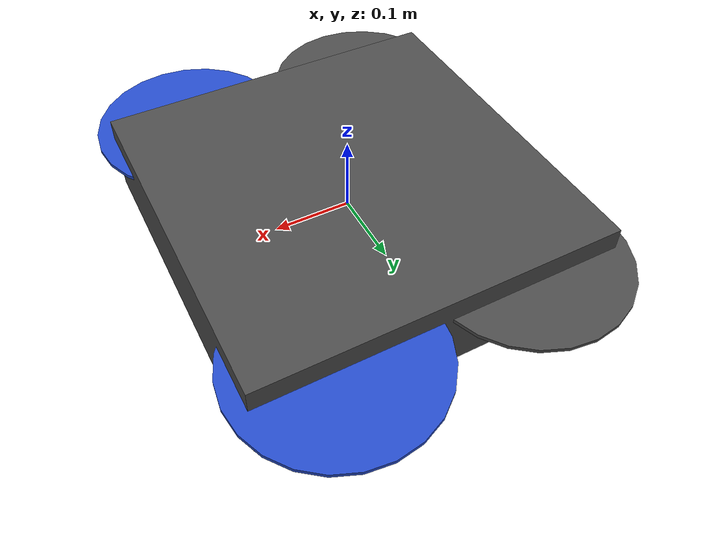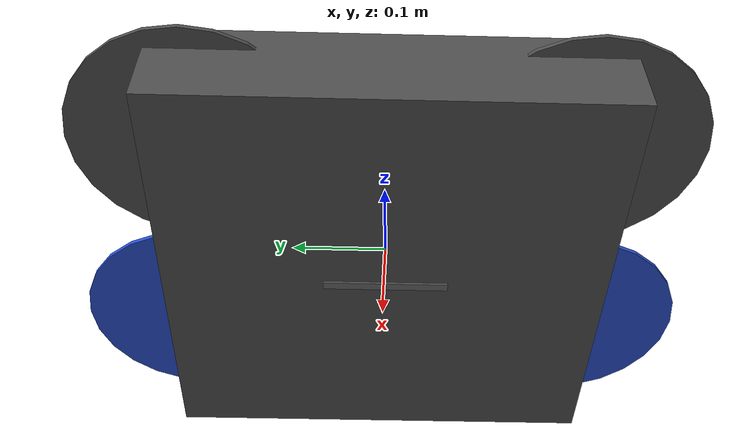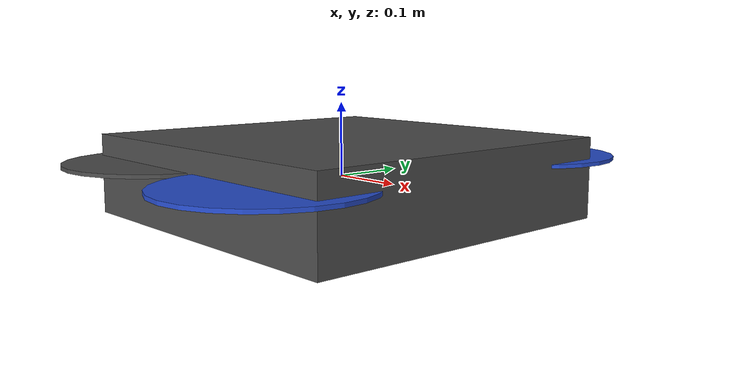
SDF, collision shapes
<sdf version='1.6'>
  <model name='iris'>
    <link name='base_link'>
      <pose frame=''>0 0 0 0 -0 0</pose>
      <inertial>
        <pose frame=''>0 0 0 0 -0 0</pose>
        <mass>1.5</mass>
        <inertia>
          <ixx>0.0347563</ixx>
          <ixy>0</ixy>
          <ixz>0</ixz>
          <iyy>0.0458929</iyy>
          <iyz>0</iyz>
          <izz>0.0977</izz>
        </inertia>
      </inertial>
      <collision name='base_link_inertia_collision'>
        <pose frame=''>0 0 0 0 -0 0</pose>
        <geometry>
          <box>
            <size>0.47 0.47 0.11</size>
          </box>
        </geometry>
        <surface>
          <contact>
            <ode>
              <min_depth>0.001</min_depth>
              <max_vel>0</max_vel>
            </ode>
          </contact>
          <friction>
            <ode/>
          </friction>
        </surface>
      </collision>
      <collision name='base_link_fixed_joint_lump__front_cam_link_collision_1'>
        <pose frame=''>0 0 -0.05 0 0.26179 0</pose>
        <geometry>
          <box>
            <size>0.007 0.13 0.02</size>
          </box>
        </geometry>
        <surface>
          <contact>
            <ode/>
          </contact>
          <friction>
            <ode/>
          </friction>
        </surface>
      </collision>
      <collision name='base_link_fixed_joint_lump__thermal_cam_link_collision_2'>
        <pose frame=''>0 0 -0.05 0 0.26179 0</pose>
        <geometry>
          <box>
            <size>0.01 0.01 0.01</size>
          </box>
        </geometry>
        <surface>
          <contact>
            <ode/>
          </contact>
          <friction>
            <ode/>
          </friction>
        </surface>
      </collision>
      <collision name='base_link_fixed_joint_lump__thermal_cam_thermal_link_collision_3'>
        <pose frame=''>0 0 -0.05 0 0.26179 0</pose>
        <geometry>
          <box>
            <size>0.01 0.01 0.01</size>
          </box>
        </geometry>
        <surface>
          <contact>
            <ode/>
          </contact>
          <friction>
            <ode/>
          </friction>
        </surface>
      </collision>
      <visual name='base_link_inertia_visual'>
        <pose frame=''>0 0 0 0 -0 0</pose>
        <geometry>
          <mesh>
            <scale>1 1 1</scale>
            <uri>model://rotors_description/meshes/iris.stl</uri>
          </mesh>
        </geometry>
        <material>
          <script>
            <name>Gazebo/DarkGrey</name>
            <uri>file://media/materials/scripts/gazebo.material</uri>
          </script>
        </material>
      </visual>
      <visual name='base_link_fixed_joint_lump__front_cam_link_visual_1'>
        <pose frame=''>0 0 -0.05 0 0.26179 0</pose>
        <geometry>
          <box>
            <size>0.007 0.13 0.02</size>
          </box>
        </geometry>
        <material>
          <script>
            <name>Gazebo/Grey</name>
            <uri>file://media/materials/scripts/gazebo.material</uri>
          </script>
        </material>
      </visual>
      <visual name='base_link_fixed_joint_lump__thermal_cam_link_visual_2'>
        <pose frame=''>0 0 -0.05 0 0.26179 0</pose>
        <geometry>
          <box>
            <size>0.01 0.01 0.01</size>
          </box>
        </geometry>
        <material>
          <script>
            <uri>__default__</uri>
            <name>__default__</name>
          </script>
        </material>
      </visual>
      <visual name='base_link_fixed_joint_lump__thermal_cam_thermal_link_visual_3'>
        <pose frame=''>0 0 -0.05 0 0.26179 0</pose>
        <geometry>
          <box>
            <size>0.01 0.01 0.01</size>
          </box>
        </geometry>
        <material>
          <script>
            <uri>__default__</uri>
            <name>__default__</name>
          </script>
        </material>
      </visual>
      <velocity_decay/>
      <velocity_decay/>
      <velocity_decay/>
      <sensor name='front_cam' type='depth'>
        <update_rate>20</update_rate>
        <camera name='__default__'>
          <horizontal_fov>1.09607</horizontal_fov>
          <image>
            <format>R8G8B8</format>
            <width>640</width>
            <height>480</height>
          </image>
          <clip>
            <near>0.5</near>
            <far>9</far>
          </clip>
        </camera>
        <plugin name='front_cam_camera_controller' filename='libgazebo_ros_openni_kinect.so'>
          <imageTopicName>front_cam/rgb/image_raw</imageTopicName>
          <cameraInfoTopicName>front_cam/rgb/camera_info</cameraInfoTopicName>
          <depthImageTopicName>front_cam/depth/image_raw</depthImageTopicName>
          <depthImageCameraInfoTopicName>front_cam/depth/camera_info</depthImageCameraInfoTopicName>
          <pointCloudTopicName>front_cam/depth/points</pointCloudTopicName>
          <frameName>front_cam_depth_optical_frame</frameName>
        </plugin>
        <pose frame=''>0 0.049 -0.05 0 0.26179 0</pose>
      </sensor>
      <velocity_decay/>
      <sensor name='thermal_cam_camera_sensor' type='camera'>
        <update_rate>77</update_rate>
        <camera name='__default__'>
          <horizontal_fov>1.0472</horizontal_fov>
          <image>
            <format>R8G8B8</format>
            <width>640</width>
            <height>480</height>
          </image>
          <clip>
            <near>0.01</near>
            <far>100</far>
          </clip>
        </camera>
        <plugin name='thermal_cam_camera_controller' filename='libgazebo_ros_camera.so'>
          <cameraName>thermal_cam</cameraName>
          <alwaysOn>true</alwaysOn>
          <updateRate>77</updateRate>
          <imageTopicName>RGB/image_raw</imageTopicName>
          <cameraInfoTopicName>RGB/camera_info</cameraInfoTopicName>
          <frameName>thermal_cam_optical_frame</frameName>
        </plugin>
        <pose frame=''>0 0 -0.05 0 0.26179 0</pose>
      </sensor>
      <gravity>1</gravity>
      <velocity_decay/>
      <sensor name='thermal_cam_camera_sensor' type='camera'>
        <update_rate>10</update_rate>
        <camera name='__default__'>
          <horizontal_fov>0.977384</horizontal_fov>
          <image>
            <format>R8G8B8</format>
            <width>160</width>
            <height>120</height>
          </image>
          <clip>
            <near>0.01</near>
            <far>100</far>
          </clip>
        </camera>
        <plugin name='thermal_camera_controller' filename='libgazebo_ros_thermal_camera_color.so'>
          <alwaysOn>true</alwaysOn>
          <updateRate>10</updateRate>
          <imageTopicName>/thermal_cam/image_raw</imageTopicName>
          <cameraInfoTopicName>/thermal_cam/camera_info</cameraInfoTopicName>
          <frameName>thermal_cam_optical_frame</frameName>
        </plugin>
        <pose frame=''>0 0 -0.05 0 0.26179 0</pose>
      </sensor>
    </link>
    <link name='/ground_truth/odometry_sensorgt_link'>
      <pose frame=''>0 0 0 0 -0 0</pose>
      <inertial>
        <pose frame=''>0 0 0 0 -0 0</pose>
        <mass>1e-05</mass>
        <inertia>
          <ixx>1e-05</ixx>
          <ixy>0</ixy>
          <ixz>0</ixz>
          <iyy>1e-05</iyy>
          <iyz>0</iyz>
          <izz>1e-05</izz>
        </inertia>
      </inertial>
    </link>
    <joint name='/ground_truth/odometry_sensorgt_joint' type='revolute'>
      <child>/ground_truth/odometry_sensorgt_link</child>
      <parent>base_link</parent>
      <axis>
        <xyz>1 0 0</xyz>
        <limit>
          <lower>0</lower>
          <upper>0</upper>
          <effort>0</effort>
          <velocity>0</velocity>
        </limit>
        <dynamics>
          <spring_reference>0</spring_reference>
          <spring_stiffness>0</spring_stiffness>
        </dynamics>
        <use_parent_model_frame>1</use_parent_model_frame>
      </axis>
    </joint>
    <link name='/imu_link'>
      <pose frame=''>0 0 0 0 -0 0</pose>
      <inertial>
        <pose frame=''>0 0 0 0 -0 0</pose>
        <mass>0.015</mass>
        <inertia>
          <ixx>1e-05</ixx>
          <ixy>0</ixy>
          <ixz>0</ixz>
          <iyy>1e-05</iyy>
          <iyz>0</iyz>
          <izz>1e-05</izz>
        </inertia>
      </inertial>
    </link>
    <joint name='/imu_joint' type='revolute'>
      <child>/imu_link</child>
      <parent>base_link</parent>
      <axis>
        <xyz>1 0 0</xyz>
        <limit>
          <lower>0</lower>
          <upper>0</upper>
          <effort>0</effort>
          <velocity>0</velocity>
        </limit>
        <dynamics>
          <spring_reference>0</spring_reference>
          <spring_stiffness>0</spring_stiffness>
        </dynamics>
        <use_parent_model_frame>1</use_parent_model_frame>
      </axis>
    </joint>
    <link name='/imugt_link'>
      <pose frame=''>0 0 0 0 -0 0</pose>
      <inertial>
        <pose frame=''>0 0 0 0 -0 0</pose>
        <mass>1e-05</mass>
        <inertia>
          <ixx>1e-05</ixx>
          <ixy>0</ixy>
          <ixz>0</ixz>
          <iyy>1e-05</iyy>
          <iyz>0</iyz>
          <izz>1e-05</izz>
        </inertia>
      </inertial>
    </link>
    <joint name='/imugt_joint' type='revolute'>
      <child>/imugt_link</child>
      <parent>base_link</parent>
      <axis>
        <xyz>1 0 0</xyz>
        <limit>
          <lower>0</lower>
          <upper>0</upper>
          <effort>0</effort>
          <velocity>0</velocity>
        </limit>
        <dynamics>
          <spring_reference>0</spring_reference>
          <spring_stiffness>0</spring_stiffness>
        </dynamics>
        <use_parent_model_frame>1</use_parent_model_frame>
      </axis>
    </joint>
    <link name='rotor_0'>
      <pose frame=''>0.13 -0.22 0.023 0 -0 0</pose>
      <inertial>
        <pose frame=''>0 0 0 0 -0 0</pose>
        <mass>0.005</mass>
        <inertia>
          <ixx>9.75e-07</ixx>
          <ixy>0</ixy>
          <ixz>0</ixz>
          <iyy>0.000273104</iyy>
          <iyz>0</iyz>
          <izz>0.000274004</izz>
        </inertia>
      </inertial>
      <collision name='rotor_0_collision'>
        <pose frame=''>0 0 0 0 -0 0</pose>
        <geometry>
          <cylinder>
            <length>0.005</length>
            <radius>0.128</radius>
          </cylinder>
        </geometry>
        <surface>
          <contact>
            <ode/>
          </contact>
          <friction>
            <ode/>
          </friction>
        </surface>
      </collision>
      <visual name='rotor_0_visual'>
        <pose frame=''>0 0 0 0 -0 0</pose>
        <geometry>
          <mesh>
            <scale>1 1 1</scale>
            <uri>model://rotors_description/meshes/iris_prop_ccw.dae</uri>
          </mesh>
        </geometry>
        <material>
          <script>
            <name>Gazebo/Blue</name>
            <uri>file://media/materials/scripts/gazebo.material</uri>
          </script>
        </material>
      </visual>
      <gravity>1</gravity>
      <velocity_decay/>
    </link>
    <joint name='rotor_0_joint' type='revolute'>
      <child>rotor_0</child>
      <parent>base_link</parent>
      <axis>
        <xyz>0 0 1</xyz>
        <limit>
          <lower>-1e+16</lower>
          <upper>1e+16</upper>
        </limit>
        <dynamics>
          <spring_reference>0</spring_reference>
          <spring_stiffness>0</spring_stiffness>
        </dynamics>
        <use_parent_model_frame>1</use_parent_model_frame>
      </axis>
    </joint>
    <link name='rotor_1'>
      <pose frame=''>-0.13 0.2 0.023 0 -0 0</pose>
      <inertial>
        <pose frame=''>0 0 0 0 -0 0</pose>
        <mass>0.005</mass>
        <inertia>
          <ixx>9.75e-07</ixx>
          <ixy>0</ixy>
          <ixz>0</ixz>
          <iyy>0.000273104</iyy>
          <iyz>0</iyz>
          <izz>0.000274004</izz>
        </inertia>
      </inertial>
      <collision name='rotor_1_collision'>
        <pose frame=''>0 0 0 0 -0 0</pose>
        <geometry>
          <cylinder>
            <length>0.005</length>
            <radius>0.128</radius>
          </cylinder>
        </geometry>
        <surface>
          <contact>
            <ode/>
          </contact>
          <friction>
            <ode/>
          </friction>
        </surface>
      </collision>
      <visual name='rotor_1_visual'>
        <pose frame=''>0 0 0 0 -0 0</pose>
        <geometry>
          <mesh>
            <scale>1 1 1</scale>
            <uri>model://rotors_description/meshes/iris_prop_ccw.dae</uri>
          </mesh>
        </geometry>
        <material>
          <script>
            <name>Gazebo/DarkGrey</name>
            <uri>file://media/materials/scripts/gazebo.material</uri>
          </script>
        </material>
      </visual>
      <gravity>1</gravity>
      <velocity_decay/>
    </link>
    <joint name='rotor_1_joint' type='revolute'>
      <child>rotor_1</child>
      <parent>base_link</parent>
      <axis>
        <xyz>0 0 1</xyz>
        <limit>
          <lower>-1e+16</lower>
          <upper>1e+16</upper>
        </limit>
        <dynamics>
          <spring_reference>0</spring_reference>
          <spring_stiffness>0</spring_stiffness>
        </dynamics>
        <use_parent_model_frame>1</use_parent_model_frame>
      </axis>
    </joint>
    <link name='rotor_2'>
      <pose frame=''>0.13 0.22 0.023 0 -0 0</pose>
      <inertial>
        <pose frame=''>0 0 0 0 -0 0</pose>
        <mass>0.005</mass>
        <inertia>
          <ixx>9.75e-07</ixx>
          <ixy>0</ixy>
          <ixz>0</ixz>
          <iyy>0.000273104</iyy>
          <iyz>0</iyz>
          <izz>0.000274004</izz>
        </inertia>
      </inertial>
      <collision name='rotor_2_collision'>
        <pose frame=''>0 0 0 0 -0 0</pose>
        <geometry>
          <cylinder>
            <length>0.005</length>
            <radius>0.128</radius>
          </cylinder>
        </geometry>
        <surface>
          <contact>
            <ode/>
          </contact>
          <friction>
            <ode/>
          </friction>
        </surface>
      </collision>
      <visual name='rotor_2_visual'>
        <pose frame=''>0 0 0 0 -0 0</pose>
        <geometry>
          <mesh>
            <scale>1 1 1</scale>
            <uri>model://rotors_description/meshes/iris_prop_cw.dae</uri>
          </mesh>
        </geometry>
        <material>
          <script>
            <name>Gazebo/Blue</name>
            <uri>file://media/materials/scripts/gazebo.material</uri>
          </script>
        </material>
      </visual>
      <gravity>1</gravity>
      <velocity_decay/>
    </link>
    <joint name='rotor_2_joint' type='revolute'>
      <child>rotor_2</child>
      <parent>base_link</parent>
      <axis>
        <xyz>0 0 1</xyz>
        <limit>
          <lower>-1e+16</lower>
          <upper>1e+16</upper>
        </limit>
        <dynamics>
          <spring_reference>0</spring_reference>
          <spring_stiffness>0</spring_stiffness>
        </dynamics>
        <use_parent_model_frame>1</use_parent_model_frame>
      </axis>
    </joint>
    <link name='rotor_3'>
      <pose frame=''>-0.13 -0.2 0.023 0 -0 0</pose>
      <inertial>
        <pose frame=''>0 0 0 0 -0 0</pose>
        <mass>0.005</mass>
        <inertia>
          <ixx>9.75e-07</ixx>
          <ixy>0</ixy>
          <ixz>0</ixz>
          <iyy>0.000273104</iyy>
          <iyz>0</iyz>
          <izz>0.000274004</izz>
        </inertia>
      </inertial>
      <collision name='rotor_3_collision'>
        <pose frame=''>0 0 0 0 -0 0</pose>
        <geometry>
          <cylinder>
            <length>0.005</length>
            <radius>0.128</radius>
          </cylinder>
        </geometry>
        <surface>
          <contact>
            <ode/>
          </contact>
          <friction>
            <ode/>
          </friction>
        </surface>
      </collision>
      <visual name='rotor_3_visual'>
        <pose frame=''>0 0 0 0 -0 0</pose>
        <geometry>
          <mesh>
            <scale>1 1 1</scale>
            <uri>model://rotors_description/meshes/iris_prop_cw.dae</uri>
          </mesh>
        </geometry>
        <material>
          <script>
            <name>Gazebo/DarkGrey</name>
            <uri>file://media/materials/scripts/gazebo.material</uri>
          </script>
        </material>
      </visual>
      <gravity>1</gravity>
      <velocity_decay/>
    </link>
    <joint name='rotor_3_joint' type='revolute'>
      <child>rotor_3</child>
      <parent>base_link</parent>
      <axis>
        <xyz>0 0 1</xyz>
        <limit>
          <lower>-1e+16</lower>
          <upper>1e+16</upper>
        </limit>
        <dynamics>
          <spring_reference>0</spring_reference>
          <spring_stiffness>0</spring_stiffness>
        </dynamics>
        <use_parent_model_frame>1</use_parent_model_frame>
      </axis>
    </joint>
    <plugin name='rosbag' filename='librotors_gazebo_multirotor_base_plugin.so'>
      <robotNamespace/>
      <linkName>base_link</linkName>
      <rotorVelocitySlowdownSim>10</rotorVelocitySlowdownSim>
    </plugin>
    <plugin name='front_right_motor_model' filename='librotors_gazebo_motor_model.so'>
      <robotNamespace/>
      <jointName>rotor_0_joint</jointName>
      <linkName>rotor_0</linkName>
      <turningDirection>ccw</turningDirection>
      <timeConstantUp>0.0125</timeConstantUp>
      <timeConstantDown>0.025</timeConstantDown>
      <maxRotVelocity>1100</maxRotVelocity>
      <motorConstant>8.54858e-06</motorConstant>
      <momentConstant>0.06</momentConstant>
      <commandSubTopic>/gazebo/command/motor_speed</commandSubTopic>
      <motorNumber>0</motorNumber>
      <rotorDragCoefficient>0.000806428</rotorDragCoefficient>
      <rollingMomentCoefficient>1e-06</rollingMomentCoefficient>
      <motorSpeedPubTopic>/motor_speed/0</motorSpeedPubTopic>
      <rotorVelocitySlowdownSim>10</rotorVelocitySlowdownSim>
    </plugin>
    <plugin name='back_left_motor_model' filename='librotors_gazebo_motor_model.so'>
      <robotNamespace/>
      <jointName>rotor_1_joint</jointName>
      <linkName>rotor_1</linkName>
      <turningDirection>ccw</turningDirection>
      <timeConstantUp>0.0125</timeConstantUp>
      <timeConstantDown>0.025</timeConstantDown>
      <maxRotVelocity>1100</maxRotVelocity>
      <motorConstant>8.54858e-06</motorConstant>
      <momentConstant>0.06</momentConstant>
      <commandSubTopic>/gazebo/command/motor_speed</commandSubTopic>
      <motorNumber>1</motorNumber>
      <rotorDragCoefficient>0.000806428</rotorDragCoefficient>
      <rollingMomentCoefficient>1e-06</rollingMomentCoefficient>
      <motorSpeedPubTopic>/motor_speed/1</motorSpeedPubTopic>
      <rotorVelocitySlowdownSim>10</rotorVelocitySlowdownSim>
    </plugin>
    <plugin name='front_left_motor_model' filename='librotors_gazebo_motor_model.so'>
      <robotNamespace/>
      <jointName>rotor_2_joint</jointName>
      <linkName>rotor_2</linkName>
      <turningDirection>cw</turningDirection>
      <timeConstantUp>0.0125</timeConstantUp>
      <timeConstantDown>0.025</timeConstantDown>
      <maxRotVelocity>1100</maxRotVelocity>
      <motorConstant>8.54858e-06</motorConstant>
      <momentConstant>0.06</momentConstant>
      <commandSubTopic>/gazebo/command/motor_speed</commandSubTopic>
      <motorNumber>2</motorNumber>
      <rotorDragCoefficient>0.000806428</rotorDragCoefficient>
      <rollingMomentCoefficient>1e-06</rollingMomentCoefficient>
      <motorSpeedPubTopic>/motor_speed/2</motorSpeedPubTopic>
      <rotorVelocitySlowdownSim>10</rotorVelocitySlowdownSim>
    </plugin>
    <plugin name='back_right_motor_model' filename='librotors_gazebo_motor_model.so'>
      <robotNamespace/>
      <jointName>rotor_3_joint</jointName>
      <linkName>rotor_3</linkName>
      <turningDirection>cw</turningDirection>
      <timeConstantUp>0.0125</timeConstantUp>
      <timeConstantDown>0.025</timeConstantDown>
      <maxRotVelocity>1100</maxRotVelocity>
      <motorConstant>8.54858e-06</motorConstant>
      <momentConstant>0.06</momentConstant>
      <commandSubTopic>/gazebo/command/motor_speed</commandSubTopic>
      <motorNumber>3</motorNumber>
      <rotorDragCoefficient>0.000806428</rotorDragCoefficient>
      <rollingMomentCoefficient>1e-06</rollingMomentCoefficient>
      <motorSpeedPubTopic>/motor_speed/3</motorSpeedPubTopic>
      <rotorVelocitySlowdownSim>10</rotorVelocitySlowdownSim>
    </plugin>
    <plugin name='mavlink_interface' filename='librotors_gazebo_mavlink_interface.so'>
      <robotNamespace/>
      <imuSubTopic>/imu</imuSubTopic>
      <mavlink_addr>INADDR_ANY</mavlink_addr>
      <mavlink_udp_port>14560</mavlink_udp_port>
      <motorSpeedCommandPubTopic>/gazebo/command/motor_speed</motorSpeedCommandPubTopic>
      <control_channels>
        <channel name='rotor1'>
          <input_index>0</input_index>
          <input_offset>0</input_offset>
          <input_scaling>1000</input_scaling>
          <zero_position_disarmed>0</zero_position_disarmed>
          <zero_position_armed>100</zero_position_armed>
          <joint_control_type>velocity</joint_control_type>
        </channel>
        <channel name='rotor2'>
          <input_index>1</input_index>
          <input_offset>0</input_offset>
          <input_scaling>1000</input_scaling>
          <zero_position_disarmed>0</zero_position_disarmed>
          <zero_position_armed>100</zero_position_armed>
          <joint_control_type>velocity</joint_control_type>
        </channel>
        <channel name='rotor3'>
          <input_index>2</input_index>
          <input_offset>0</input_offset>
          <input_scaling>1000</input_scaling>
          <zero_position_disarmed>0</zero_position_disarmed>
          <zero_position_armed>100</zero_position_armed>
          <joint_control_type>velocity</joint_control_type>
        </channel>
        <channel name='rotor4'>
          <input_index>3</input_index>
          <input_offset>0</input_offset>
          <input_scaling>1000</input_scaling>
          <zero_position_disarmed>0</zero_position_disarmed>
          <zero_position_armed>100</zero_position_armed>
          <joint_control_type>velocity</joint_control_type>
        </channel>
        <channel name='rotor5'>
          <input_index>4</input_index>
          <input_offset>1</input_offset>
          <input_scaling>324.6</input_scaling>
          <zero_position_disarmed>0</zero_position_disarmed>
          <zero_position_armed>0</zero_position_armed>
          <joint_control_type>velocity</joint_control_type>
          <joint_control_pid>
            <p>0.1</p>
            <i>0</i>
            <d>0</d>
            <iMax>0.0</iMax>
            <iMin>0.0</iMin>
            <cmdMax>2</cmdMax>
            <cmdMin>-2</cmdMin>
          </joint_control_pid>
          <joint_name>zephyr_delta_wing::propeller_joint</joint_name>
        </channel>
        <channel name='rotor6'>
          <input_index>5</input_index>
          <input_offset>0</input_offset>
          <input_scaling>0.524</input_scaling>
          <zero_position_disarmed>0</zero_position_disarmed>
          <zero_position_armed>0</zero_position_armed>
          <joint_control_type>position</joint_control_type>
          <joint_name>zephyr_delta_wing::flap_left_joint</joint_name>
          <joint_control_pid>
            <p>10.0</p>
            <i>0</i>
            <d>0</d>
            <iMax>0</iMax>
            <iMin>0</iMin>
            <cmdMax>20</cmdMax>
            <cmdMin>-20</cmdMin>
          </joint_control_pid>
        </channel>
        <channel name='rotor7'>
          <input_index>6</input_index>
          <input_offset>0</input_offset>
          <input_scaling>0.524</input_scaling>
          <zero_position_disarmed>0</zero_position_disarmed>
          <zero_position_armed>0</zero_position_armed>
          <joint_control_type>position</joint_control_type>
          <joint_name>zephyr_delta_wing::flap_right_joint</joint_name>
          <joint_control_pid>
            <p>10.0</p>
            <i>0</i>
            <d>0</d>
            <iMax>0</iMax>
            <iMin>0</iMin>
            <cmdMax>20</cmdMax>
            <cmdMin>-20</cmdMin>
          </joint_control_pid>
        </channel>
        <channel name='rotor8'>
          <input_index>7</input_index>
          <input_offset>0</input_offset>
          <input_scaling>0.524</input_scaling>
          <zero_position_disarmed>0</zero_position_disarmed>
          <zero_position_armed>0</zero_position_armed>
          <joint_control_type>position</joint_control_type>
        </channel>
      </control_channels>
    </plugin>
    <plugin name='rotors_gazebo_imu_plugin' filename='librotors_gazebo_imu_plugin.so'>
      <robotNamespace/>
      <linkName>/imu_link</linkName>
      <imuTopic>/imu</imuTopic>
      <gyroscopeNoiseDensity>0.0003394</gyroscopeNoiseDensity>
      <gyroscopeRandomWalk>3.8785e-05</gyroscopeRandomWalk>
      <gyroscopeBiasCorrelationTime>1000.0</gyroscopeBiasCorrelationTime>
      <gyroscopeTurnOnBiasSigma>0.0087</gyroscopeTurnOnBiasSigma>
      <accelerometerNoiseDensity>0.004</accelerometerNoiseDensity>
      <accelerometerRandomWalk>0.006</accelerometerRandomWalk>
      <accelerometerBiasCorrelationTime>300.0</accelerometerBiasCorrelationTime>
      <accelerometerTurnOnBiasSigma>0.196</accelerometerTurnOnBiasSigma>
    </plugin>
    <plugin name='rotors_gazebo_imugt_plugin' filename='librotors_gazebo_imu_plugin.so'>
      <robotNamespace/>
      <linkName>/imugt_link</linkName>
      <imuTopic>ground_truth/imu</imuTopic>
      <gyroscopeNoiseDensity>0.0</gyroscopeNoiseDensity>
      <gyroscopeRandomWalk>0.0</gyroscopeRandomWalk>
      <gyroscopeBiasCorrelationTime>1000.0</gyroscopeBiasCorrelationTime>
      <gyroscopeTurnOnBiasSigma>0.0</gyroscopeTurnOnBiasSigma>
      <accelerometerNoiseDensity>0.0</accelerometerNoiseDensity>
      <accelerometerRandomWalk>0.0</accelerometerRandomWalk>
      <accelerometerBiasCorrelationTime>300.0</accelerometerBiasCorrelationTime>
      <accelerometerTurnOnBiasSigma>0.0</accelerometerTurnOnBiasSigma>
    </plugin>
    <plugin name='odometry_sensorgt' filename='librotors_gazebo_odometry_plugin.so'>
      <linkName>/ground_truth/odometry_sensorgt_link</linkName>
      <robotNamespace>/ground_truth</robotNamespace>
      <poseTopic>pose</poseTopic>
      <poseWithCovarianceTopic>pose_with_covariance</poseWithCovarianceTopic>
      <positionTopic>position</positionTopic>
      <transformTopic>transform</transformTopic>
      <odometryTopic>odometry</odometryTopic>
      <parentFrameId>world</parentFrameId>
      <measurementDivisor>1</measurementDivisor>
      <measurementDelay>0</measurementDelay>
      <unknownDelay>0.0</unknownDelay>
      <noiseNormalPosition>0 0 0</noiseNormalPosition>
      <noiseNormalQuaternion>0 0 0</noiseNormalQuaternion>
      <noiseNormalLinearVelocity>0 0 0</noiseNormalLinearVelocity>
      <noiseNormalAngularVelocity>0 0 0</noiseNormalAngularVelocity>
      <noiseUniformPosition>0 0 0</noiseUniformPosition>
      <noiseUniformQuaternion>0 0 0</noiseUniformQuaternion>
      <noiseUniformLinearVelocity>0 0 0</noiseUniformLinearVelocity>
      <noiseUniformAngularVelocity>0 0 0</noiseUniformAngularVelocity>
    </plugin>
    <static>0</static>
    <plugin name='gps_controller' filename='libhector_gazebo_ros_gps.so'>
      <updateRate>40</updateRate>
      <robotNamespace>/iris</robotNamespace>
      <bodyName>base_link</bodyName>
      <frameId>base_link</frameId>
      <topicName>navsat/fix</topicName>
      <velocityTopicName>navsat/vel</velocityTopicName>
      <referenceLatitude>49.9</referenceLatitude>
      <referenceLongitude>8.9</referenceLongitude>
      <referenceHeading>0</referenceHeading>
      <referenceAltitude>0</referenceAltitude>
      <drift>0.0001 0.0001 0.0001</drift>
    </plugin>
  </model>
</sdf>
